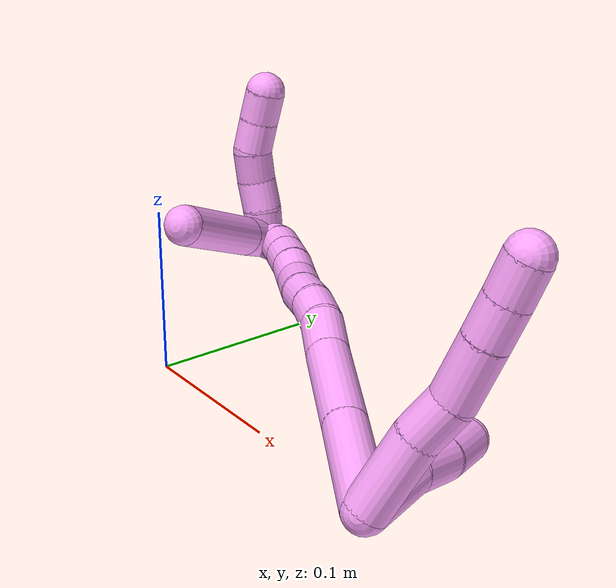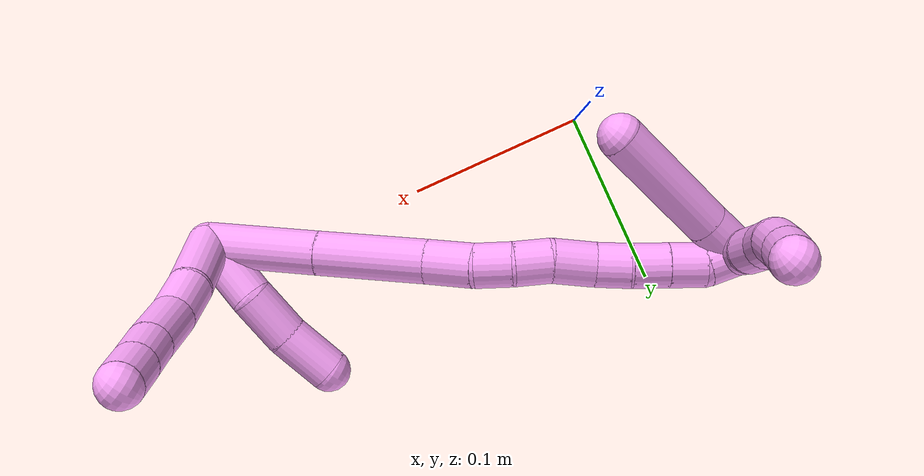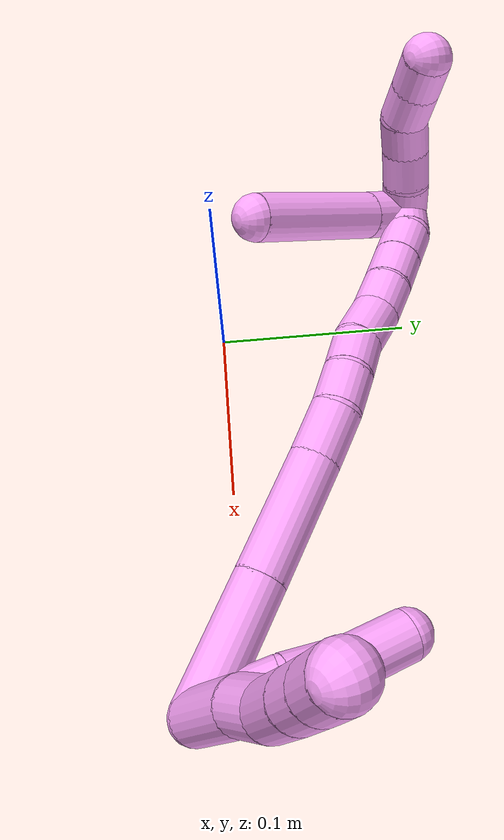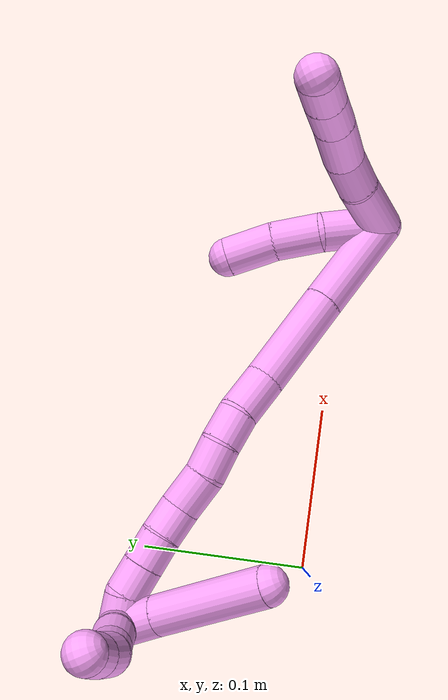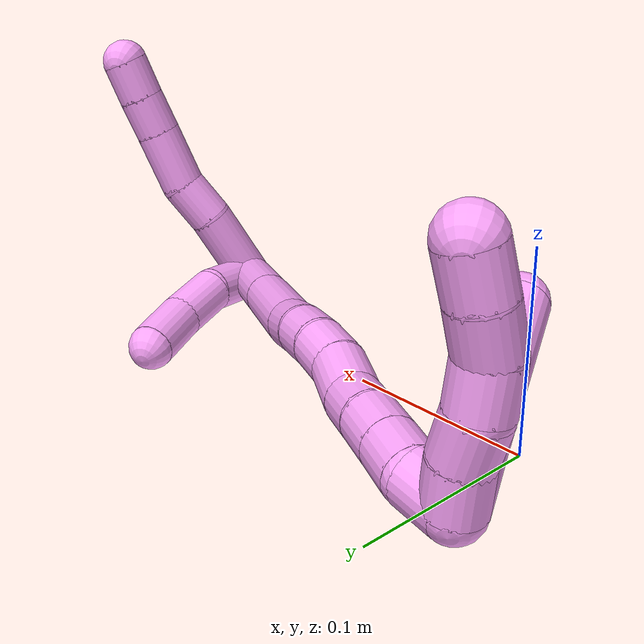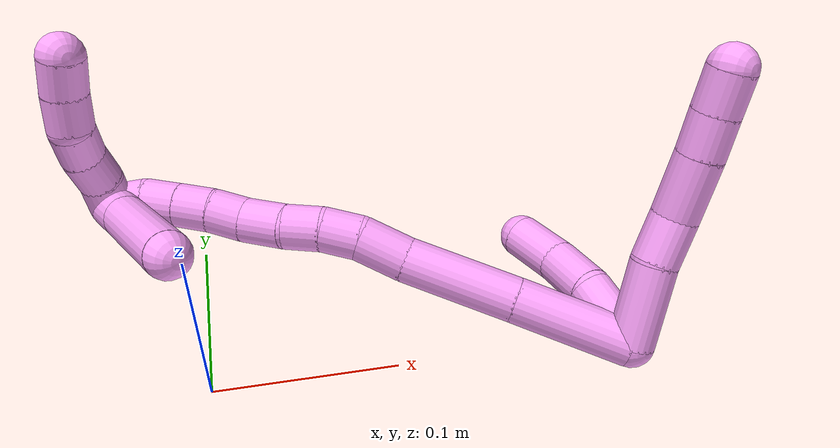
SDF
<sdf version="1.7">
 <world name="default">
  <model name="4">
   <static>0</static>
   <link name="4">
    <collision name="collision-cylinder-e_1_2_8">
     <pose>-0.022456 -0.003877 0.001171 1.27744 -1.39237 -1.11089</pose>
     <geometry><cylinder><radius>0.0125</radius><length>0.045637</length></cylinder></geometry>
     <surface>
      <friction><ode><mu>1.16</mu><mu2>1.16</mu2><slip1>0</slip1><slip2>0</slip2></ode></friction>
      <contact><ode><kp>1e+06</kp><kd>1</kd><max_vel>0</max_vel><min_depth>0.001</min_depth></ode></contact>
     </surface>
    </collision>
    <visual name="visual-cylinder-e_1_2_8">
     <pose>-0.022456 -0.003877 0.001171 1.27744 -1.39237 -1.11089</pose>
     <geometry><cylinder><radius>0.0125</radius><length>0.045637</length></cylinder></geometry>
     <material><ambient>1 0.65098 0.996078 1</ambient></material>
    </visual>
    <collision name="collision-cylinder-e_2_8_9">
     <pose>-0.057644 -0.00781 0.003544 0.047277 -1.47655 -0.04302</pose>
     <geometry><cylinder><radius>0.0125</radius><length>0.025576</length></cylinder></geometry>
     <surface>
      <friction><ode><mu>1.16</mu><mu2>1.16</mu2><slip1>0</slip1><slip2>0</slip2></ode></friction>
      <contact><ode><kp>1e+06</kp><kd>1</kd><max_vel>0</max_vel><min_depth>0.001</min_depth></ode></contact>
     </surface>
    </collision>
    <visual name="visual-cylinder-e_2_8_9">
     <pose>-0.057644 -0.00781 0.003544 0.047277 -1.47655 -0.04302</pose>
     <geometry><cylinder><radius>0.0125</radius><length>0.025576</length></cylinder></geometry>
     <material><ambient>1 0.65098 0.996078 1</ambient></material>
    </visual>
    <collision name="collision-cylinder-e_3_9_10">
     <pose>-0.086585 -0.011992 0.008247 0.867016 -1.2487 -0.6438</pose>
     <geometry><cylinder><radius>0.0125</radius><length>0.034178</length></cylinder></geometry>
     <surface>
      <friction><ode><mu>1.16</mu><mu2>1.16</mu2><slip1>0</slip1><slip2>0</slip2></ode></friction>
      <contact><ode><kp>1e+06</kp><kd>1</kd><max_vel>0</max_vel><min_depth>0.001</min_depth></ode></contact>
     </surface>
    </collision>
    <visual name="visual-cylinder-e_3_9_10">
     <pose>-0.086585 -0.011992 0.008247 0.867016 -1.2487 -0.6438</pose>
     <geometry><cylinder><radius>0.0125</radius><length>0.034178</length></cylinder></geometry>
     <material><ambient>1 0.65098 0.996078 1</ambient></material>
    </visual>
    <collision name="collision-cylinder-e_4_10_11">
     <pose>-0.113448 -0.019012 0.013634 0.993345 -1.25707 -0.750571</pose>
     <geometry><cylinder><radius>0.0125</radius><length>0.0224</length></cylinder></geometry>
     <surface>
      <friction><ode><mu>1.16</mu><mu2>1.16</mu2><slip1>0</slip1><slip2>0</slip2></ode></friction>
      <contact><ode><kp>1e+06</kp><kd>1</kd><max_vel>0</max_vel><min_depth>0.001</min_depth></ode></contact>
     </surface>
    </collision>
    <visual name="visual-cylinder-e_4_10_11">
     <pose>-0.113448 -0.019012 0.013634 0.993345 -1.25707 -0.750571</pose>
     <geometry><cylinder><radius>0.0125</radius><length>0.0224</length></cylinder></geometry>
     <material><ambient>1 0.65098 0.996078 1</ambient></material>
    </visual>
    <collision name="collision-cylinder-e_5_11_6">
     <pose>-0.134571 -0.02496 0.017614 0.969687 -1.23103 -0.713191</pose>
     <geometry><cylinder><radius>0.0125</radius><length>0.02221</length></cylinder></geometry>
     <surface>
      <friction><ode><mu>1.16</mu><mu2>1.16</mu2><slip1>0</slip1><slip2>0</slip2></ode></friction>
      <contact><ode><kp>1e+06</kp><kd>1</kd><max_vel>0</max_vel><min_depth>0.001</min_depth></ode></contact>
     </surface>
    </collision>
    <visual name="visual-cylinder-e_5_11_6">
     <pose>-0.134571 -0.02496 0.017614 0.969687 -1.23103 -0.713191</pose>
     <geometry><cylinder><radius>0.0125</radius><length>0.02221</length></cylinder></geometry>
     <material><ambient>1 0.65098 0.996078 1</ambient></material>
    </visual>
    <collision name="collision-cylinder-e_1_2_12">
     <pose>-0.009027 -0.000328 -0.016936 3.1222 -0.489611 -3.06401</pose>
     <geometry><cylinder><radius>0.0125</radius><length>0.038388</length></cylinder></geometry>
     <surface>
      <friction><ode><mu>1.16</mu><mu2>1.16</mu2><slip1>0</slip1><slip2>0</slip2></ode></friction>
      <contact><ode><kp>1e+06</kp><kd>1</kd><max_vel>0</max_vel><min_depth>0.001</min_depth></ode></contact>
     </surface>
    </collision>
    <visual name="visual-cylinder-e_1_2_12">
     <pose>-0.009027 -0.000328 -0.016936 3.1222 -0.489611 -3.06401</pose>
     <geometry><cylinder><radius>0.0125</radius><length>0.038388</length></cylinder></geometry>
     <material><ambient>1 0.65098 0.996078 1</ambient></material>
    </visual>
    <collision name="collision-cylinder-e_2_12_13">
     <pose>-0.021463 0.001521 -0.04851 -2.99389 -0.226432 1.98783</pose>
     <geometry><cylinder><radius>0.0125</radius><length>0.030374</length></cylinder></geometry>
     <surface>
      <friction><ode><mu>1.16</mu><mu2>1.16</mu2><slip1>0</slip1><slip2>0</slip2></ode></friction>
      <contact><ode><kp>1e+06</kp><kd>1</kd><max_vel>0</max_vel><min_depth>0.001</min_depth></ode></contact>
     </surface>
    </collision>
    <visual name="visual-cylinder-e_2_12_13">
     <pose>-0.021463 0.001521 -0.04851 -2.99389 -0.226432 1.98783</pose>
     <geometry><cylinder><radius>0.0125</radius><length>0.030374</length></cylinder></geometry>
     <material><ambient>1 0.65098 0.996078 1</ambient></material>
    </visual>
    <collision name="collision-cylinder-e_3_13_5">
     <pose>-0.027789 0.003526 -0.078491 3.13034 -0.187851 -3.02226</pose>
     <geometry><cylinder><radius>0.0125</radius><length>0.031239</length></cylinder></geometry>
     <surface>
      <friction><ode><mu>1.16</mu><mu2>1.16</mu2><slip1>0</slip1><slip2>0</slip2></ode></friction>
      <contact><ode><kp>1e+06</kp><kd>1</kd><max_vel>0</max_vel><min_depth>0.001</min_depth></ode></contact>
     </surface>
    </collision>
    <visual name="visual-cylinder-e_3_13_5">
     <pose>-0.027789 0.003526 -0.078491 3.13034 -0.187851 -3.02226</pose>
     <geometry><cylinder><radius>0.0125</radius><length>0.031239</length></cylinder></geometry>
     <material><ambient>1 0.65098 0.996078 1</ambient></material>
    </visual>
    <collision name="collision-cylinder-e_1_2_14">
     <pose>-0.001388 -0.020759 -0.02415 2.43155 -0.043551 -0.117358</pose>
     <geometry><cylinder><radius>0.0125</radius><length>0.063752</length></cylinder></geometry>
     <surface>
      <friction><ode><mu>1.16</mu><mu2>1.16</mu2><slip1>0</slip1><slip2>0</slip2></ode></friction>
      <contact><ode><kp>1e+06</kp><kd>1</kd><max_vel>0</max_vel><min_depth>0.001</min_depth></ode></contact>
     </surface>
    </collision>
    <visual name="visual-cylinder-e_1_2_14">
     <pose>-0.001388 -0.020759 -0.02415 2.43155 -0.043551 -0.117358</pose>
     <geometry><cylinder><radius>0.0125</radius><length>0.063752</length></cylinder></geometry>
     <material><ambient>1 0.65098 0.996078 1</ambient></material>
    </visual>
    <collision name="collision-cylinder-e_2_14_15">
     <pose>-0.003827 -0.061765 -0.071927 2.4331 -0.033785 -0.091294</pose>
     <geometry><cylinder><radius>0.0125</radius><length>0.062267</length></cylinder></geometry>
     <surface>
      <friction><ode><mu>1.16</mu><mu2>1.16</mu2><slip1>0</slip1><slip2>0</slip2></ode></friction>
      <contact><ode><kp>1e+06</kp><kd>1</kd><max_vel>0</max_vel><min_depth>0.001</min_depth></ode></contact>
     </surface>
    </collision>
    <visual name="visual-cylinder-e_2_14_15">
     <pose>-0.003827 -0.061765 -0.071927 2.4331 -0.033785 -0.091294</pose>
     <geometry><cylinder><radius>0.0125</radius><length>0.062267</length></cylinder></geometry>
     <material><ambient>1 0.65098 0.996078 1</ambient></material>
    </visual>
    <collision name="collision-cylinder-e_3_15_16">
     <pose>-0.0067 -0.091555 -0.105137 2.35828 -0.133885 -0.32186</pose>
     <geometry><cylinder><radius>0.0125</radius><length>0.027291</length></cylinder></geometry>
     <surface>
      <friction><ode><mu>1.16</mu><mu2>1.16</mu2><slip1>0</slip1><slip2>0</slip2></ode></friction>
      <contact><ode><kp>1e+06</kp><kd>1</kd><max_vel>0</max_vel><min_depth>0.001</min_depth></ode></contact>
     </surface>
    </collision>
    <visual name="visual-cylinder-e_3_15_16">
     <pose>-0.0067 -0.091555 -0.105137 2.35828 -0.133885 -0.32186</pose>
     <geometry><cylinder><radius>0.0125</radius><length>0.027291</length></cylinder></geometry>
     <material><ambient>1 0.65098 0.996078 1</ambient></material>
    </visual>
    <collision name="collision-cylinder-e_4_16_17">
     <pose>-0.007665 -0.108401 -0.122309 2.37538 0.081124 0.200726</pose>
     <geometry><cylinder><radius>0.0125</radius><length>0.021136</length></cylinder></geometry>
     <surface>
      <friction><ode><mu>1.16</mu><mu2>1.16</mu2><slip1>0</slip1><slip2>0</slip2></ode></friction>
      <contact><ode><kp>1e+06</kp><kd>1</kd><max_vel>0</max_vel><min_depth>0.001</min_depth></ode></contact>
     </surface>
    </collision>
    <visual name="visual-cylinder-e_4_16_17">
     <pose>-0.007665 -0.108401 -0.122309 2.37538 0.081124 0.200726</pose>
     <geometry><cylinder><radius>0.0125</radius><length>0.021136</length></cylinder></geometry>
     <material><ambient>1 0.65098 0.996078 1</ambient></material>
    </visual>
    <collision name="collision-cylinder-e_5_17_18">
     <pose>-0.004271 -0.122178 -0.137656 2.44618 0.246084 0.657648</pose>
     <geometry><cylinder><radius>0.0125</radius><length>0.020834</length></cylinder></geometry>
     <surface>
      <friction><ode><mu>1.16</mu><mu2>1.16</mu2><slip1>0</slip1><slip2>0</slip2></ode></friction>
      <contact><ode><kp>1e+06</kp><kd>1</kd><max_vel>0</max_vel><min_depth>0.001</min_depth></ode></contact>
     </surface>
    </collision>
    <visual name="visual-cylinder-e_5_17_18">
     <pose>-0.004271 -0.122178 -0.137656 2.44618 0.246084 0.657648</pose>
     <geometry><cylinder><radius>0.0125</radius><length>0.020834</length></cylinder></geometry>
     <material><ambient>1 0.65098 0.996078 1</ambient></material>
    </visual>
    <collision name="collision-cylinder-e_6_18_19">
     <pose>0.00041 -0.134533 -0.156024 2.63549 0.174887 0.653702</pose>
     <geometry><cylinder><radius>0.0125</radius><length>0.024641</length></cylinder></geometry>
     <surface>
      <friction><ode><mu>1.16</mu><mu2>1.16</mu2><slip1>0</slip1><slip2>0</slip2></ode></friction>
      <contact><ode><kp>1e+06</kp><kd>1</kd><max_vel>0</max_vel><min_depth>0.001</min_depth></ode></contact>
     </surface>
    </collision>
    <visual name="visual-cylinder-e_6_18_19">
     <pose>0.00041 -0.134533 -0.156024 2.63549 0.174887 0.653702</pose>
     <geometry><cylinder><radius>0.0125</radius><length>0.024641</length></cylinder></geometry>
     <material><ambient>1 0.65098 0.996078 1</ambient></material>
    </visual>
    <collision name="collision-cylinder-e_7_19_20">
     <pose>0.003028 -0.146819 -0.174305 2.44577 0.047448 0.130671</pose>
     <geometry><cylinder><radius>0.0125</radius><length>0.020006</length></cylinder></geometry>
     <surface>
      <friction><ode><mu>1.16</mu><mu2>1.16</mu2><slip1>0</slip1><slip2>0</slip2></ode></friction>
      <contact><ode><kp>1e+06</kp><kd>1</kd><max_vel>0</max_vel><min_depth>0.001</min_depth></ode></contact>
     </surface>
    </collision>
    <visual name="visual-cylinder-e_7_19_20">
     <pose>0.003028 -0.146819 -0.174305 2.44577 0.047448 0.130671</pose>
     <geometry><cylinder><radius>0.0125</radius><length>0.020006</length></cylinder></geometry>
     <material><ambient>1 0.65098 0.996078 1</ambient></material>
    </visual>
    <collision name="collision-cylinder-e_8_20_21">
     <pose>0.005128 -0.159327 -0.18975 2.47616 0.16302 0.464278</pose>
     <geometry><cylinder><radius>0.0125</radius><length>0.020035</length></cylinder></geometry>
     <surface>
      <friction><ode><mu>1.16</mu><mu2>1.16</mu2><slip1>0</slip1><slip2>0</slip2></ode></friction>
      <contact><ode><kp>1e+06</kp><kd>1</kd><max_vel>0</max_vel><min_depth>0.001</min_depth></ode></contact>
     </surface>
    </collision>
    <visual name="visual-cylinder-e_8_20_21">
     <pose>0.005128 -0.159327 -0.18975 2.47616 0.16302 0.464278</pose>
     <geometry><cylinder><radius>0.0125</radius><length>0.020035</length></cylinder></geometry>
     <material><ambient>1 0.65098 0.996078 1</ambient></material>
    </visual>
    <collision name="collision-cylinder-e_9_21_22">
     <pose>0.008497 -0.171403 -0.205363 2.49042 0.175006 0.508465</pose>
     <geometry><cylinder><radius>0.0125</radius><length>0.020013</length></cylinder></geometry>
     <surface>
      <friction><ode><mu>1.16</mu><mu2>1.16</mu2><slip1>0</slip1><slip2>0</slip2></ode></friction>
      <contact><ode><kp>1e+06</kp><kd>1</kd><max_vel>0</max_vel><min_depth>0.001</min_depth></ode></contact>
     </surface>
    </collision>
    <visual name="visual-cylinder-e_9_21_22">
     <pose>0.008497 -0.171403 -0.205363 2.49042 0.175006 0.508465</pose>
     <geometry><cylinder><radius>0.0125</radius><length>0.020013</length></cylinder></geometry>
     <material><ambient>1 0.65098 0.996078 1</ambient></material>
    </visual>
    <collision name="collision-cylinder-e_10_22_1">
     <pose>0.014647 -0.184166 -0.219091 2.28525 0.455869 0.940431</pose>
     <geometry><cylinder><radius>0.0125</radius><length>0.020024</length></cylinder></geometry>
     <surface>
      <friction><ode><mu>1.16</mu><mu2>1.16</mu2><slip1>0</slip1><slip2>0</slip2></ode></friction>
      <contact><ode><kp>1e+06</kp><kd>1</kd><max_vel>0</max_vel><min_depth>0.001</min_depth></ode></contact>
     </surface>
    </collision>
    <visual name="visual-cylinder-e_10_22_1">
     <pose>0.014647 -0.184166 -0.219091 2.28525 0.455869 0.940431</pose>
     <geometry><cylinder><radius>0.0125</radius><length>0.020024</length></cylinder></geometry>
     <material><ambient>1 0.65098 0.996078 1</ambient></material>
    </visual>
    <collision name="collision-cylinder-e_1_1_23">
     <pose>0.018998 -0.192542 -0.211383 0.116027 -0.004106 -0.000238</pose>
     <geometry><cylinder><radius>0.0125</radius><length>0.027379</length></cylinder></geometry>
     <surface>
      <friction><ode><mu>1.16</mu><mu2>1.16</mu2><slip1>0</slip1><slip2>0</slip2></ode></friction>
      <contact><ode><kp>1e+06</kp><kd>1</kd><max_vel>0</max_vel><min_depth>0.001</min_depth></ode></contact>
     </surface>
    </collision>
    <visual name="visual-cylinder-e_1_1_23">
     <pose>0.018998 -0.192542 -0.211383 0.116027 -0.004106 -0.000238</pose>
     <geometry><cylinder><radius>0.0125</radius><length>0.027379</length></cylinder></geometry>
     <material><ambient>1 0.65098 0.996078 1</ambient></material>
    </visual>
    <collision name="collision-cylinder-e_2_23_4">
     <pose>0.018402 -0.199419 -0.161867 0.146274 -0.014869 -0.001089</pose>
     <geometry><cylinder><radius>0.0125</radius><length>0.072621</length></cylinder></geometry>
     <surface>
      <friction><ode><mu>1.16</mu><mu2>1.16</mu2><slip1>0</slip1><slip2>0</slip2></ode></friction>
      <contact><ode><kp>1e+06</kp><kd>1</kd><max_vel>0</max_vel><min_depth>0.001</min_depth></ode></contact>
     </surface>
    </collision>
    <visual name="visual-cylinder-e_2_23_4">
     <pose>0.018402 -0.199419 -0.161867 0.146274 -0.014869 -0.001089</pose>
     <geometry><cylinder><radius>0.0125</radius><length>0.072621</length></cylinder></geometry>
     <material><ambient>1 0.65098 0.996078 1</ambient></material>
    </visual>
    <collision name="collision-cylinder-e_1_1_24">
     <pose>0.011904 -0.197451 -0.222391 1.19134 -0.796667 -0.555719</pose>
     <geometry><cylinder><radius>0.0125</radius><length>0.02</length></cylinder></geometry>
     <surface>
      <friction><ode><mu>1.16</mu><mu2>1.16</mu2><slip1>0</slip1><slip2>0</slip2></ode></friction>
      <contact><ode><kp>1e+06</kp><kd>1</kd><max_vel>0</max_vel><min_depth>0.001</min_depth></ode></contact>
     </surface>
    </collision>
    <visual name="visual-cylinder-e_1_1_24">
     <pose>0.011904 -0.197451 -0.222391 1.19134 -0.796667 -0.555719</pose>
     <geometry><cylinder><radius>0.0125</radius><length>0.02</length></cylinder></geometry>
     <material><ambient>1 0.65098 0.996078 1</ambient></material>
    </visual>
    <collision name="collision-cylinder-e_2_24_25">
     <pose>-0.001303 -0.211641 -0.217782 1.31421 -0.650642 -0.509155</pose>
     <geometry><cylinder><radius>0.0125</radius><length>0.02</length></cylinder></geometry>
     <surface>
      <friction><ode><mu>1.16</mu><mu2>1.16</mu2><slip1>0</slip1><slip2>0</slip2></ode></friction>
      <contact><ode><kp>1e+06</kp><kd>1</kd><max_vel>0</max_vel><min_depth>0.001</min_depth></ode></contact>
     </surface>
    </collision>
    <visual name="visual-cylinder-e_2_24_25">
     <pose>-0.001303 -0.211641 -0.217782 1.31421 -0.650642 -0.509155</pose>
     <geometry><cylinder><radius>0.0125</radius><length>0.02</length></cylinder></geometry>
     <material><ambient>1 0.65098 0.996078 1</ambient></material>
    </visual>
    <collision name="collision-cylinder-e_3_25_26">
     <pose>-0.014141 -0.225772 -0.21221 1.06622 -0.745087 -0.45329</pose>
     <geometry><cylinder><radius>0.0125</radius><length>0.02</length></cylinder></geometry>
     <surface>
      <friction><ode><mu>1.16</mu><mu2>1.16</mu2><slip1>0</slip1><slip2>0</slip2></ode></friction>
      <contact><ode><kp>1e+06</kp><kd>1</kd><max_vel>0</max_vel><min_depth>0.001</min_depth></ode></contact>
     </surface>
    </collision>
    <visual name="visual-cylinder-e_3_25_26">
     <pose>-0.014141 -0.225772 -0.21221 1.06622 -0.745087 -0.45329</pose>
     <geometry><cylinder><radius>0.0125</radius><length>0.02</length></cylinder></geometry>
     <material><ambient>1 0.65098 0.996078 1</ambient></material>
    </visual>
    <collision name="collision-cylinder-e_4_26_27">
     <pose>-0.029689 -0.236797 -0.207221 1.26784 -1.06908 -0.821</pose>
     <geometry><cylinder><radius>0.0125</radius><length>0.02</length></cylinder></geometry>
     <surface>
      <friction><ode><mu>1.16</mu><mu2>1.16</mu2><slip1>0</slip1><slip2>0</slip2></ode></friction>
      <contact><ode><kp>1e+06</kp><kd>1</kd><max_vel>0</max_vel><min_depth>0.001</min_depth></ode></contact>
     </surface>
    </collision>
    <visual name="visual-cylinder-e_4_26_27">
     <pose>-0.029689 -0.236797 -0.207221 1.26784 -1.06908 -0.821</pose>
     <geometry><cylinder><radius>0.0125</radius><length>0.02</length></cylinder></geometry>
     <material><ambient>1 0.65098 0.996078 1</ambient></material>
    </visual>
    <collision name="collision-cylinder-e_5_27_3">
     <pose>-0.047333 -0.245431 -0.203583 1.07179 -1.09221 -0.692749</pose>
     <geometry><cylinder><radius>0.0125</radius><length>0.02</length></cylinder></geometry>
     <surface>
      <friction><ode><mu>1.16</mu><mu2>1.16</mu2><slip1>0</slip1><slip2>0</slip2></ode></friction>
      <contact><ode><kp>1e+06</kp><kd>1</kd><max_vel>0</max_vel><min_depth>0.001</min_depth></ode></contact>
     </surface>
    </collision>
    <visual name="visual-cylinder-e_5_27_3">
     <pose>-0.047333 -0.245431 -0.203583 1.07179 -1.09221 -0.692749</pose>
     <geometry><cylinder><radius>0.0125</radius><length>0.02</length></cylinder></geometry>
     <material><ambient>1 0.65098 0.996078 1</ambient></material>
    </visual>
    <collision name="collision-sphere-3">
     <pose>-0.056209 -0.249474 -0.201379 0 -0 0</pose>
     <geometry><sphere><radius>0.0125</radius></sphere></geometry>
     <surface>
      <friction><ode><mu>1.16</mu><mu2>1.16</mu2><slip1>0</slip1><slip2>0</slip2></ode></friction>
      <contact><ode><kp>1e+06</kp><kd>1</kd><max_vel>0</max_vel><min_depth>0.001</min_depth></ode></contact>
     </surface>
    </collision>
    <visual name="visual-sphere-3">
     <pose>-0.056209 -0.249474 -0.201379 0 -0 0</pose>
     <geometry><sphere><radius>0.0125</radius></sphere></geometry>
     <material><ambient>1 0.65098 0.996078 1</ambient></material>
    </visual>
    <collision name="collision-sphere-27">
     <pose>-0.038456 -0.241387 -0.205787 0 -0 0</pose>
     <geometry><sphere><radius>0.0125</radius></sphere></geometry>
     <surface>
      <friction><ode><mu>1.16</mu><mu2>1.16</mu2><slip1>0</slip1><slip2>0</slip2></ode></friction>
      <contact><ode><kp>1e+06</kp><kd>1</kd><max_vel>0</max_vel><min_depth>0.001</min_depth></ode></contact>
     </surface>
    </collision>
    <visual name="visual-sphere-27">
     <pose>-0.038456 -0.241387 -0.205787 0 -0 0</pose>
     <geometry><sphere><radius>0.0125</radius></sphere></geometry>
     <material><ambient>1 0.65098 0.996078 1</ambient></material>
    </visual>
    <collision name="collision-sphere-26">
     <pose>-0.020921 -0.232206 -0.208656 0 -0 0</pose>
     <geometry><sphere><radius>0.0125</radius></sphere></geometry>
     <surface>
      <friction><ode><mu>1.16</mu><mu2>1.16</mu2><slip1>0</slip1><slip2>0</slip2></ode></friction>
      <contact><ode><kp>1e+06</kp><kd>1</kd><max_vel>0</max_vel><min_depth>0.001</min_depth></ode></contact>
     </surface>
    </collision>
    <visual name="visual-sphere-26">
     <pose>-0.020921 -0.232206 -0.208656 0 -0 0</pose>
     <geometry><sphere><radius>0.0125</radius></sphere></geometry>
     <material><ambient>1 0.65098 0.996078 1</ambient></material>
    </visual>
    <collision name="collision-sphere-25">
     <pose>-0.00736 -0.219338 -0.215763 0 -0 0</pose>
     <geometry><sphere><radius>0.0125</radius></sphere></geometry>
     <surface>
      <friction><ode><mu>1.16</mu><mu2>1.16</mu2><slip1>0</slip1><slip2>0</slip2></ode></friction>
      <contact><ode><kp>1e+06</kp><kd>1</kd><max_vel>0</max_vel><min_depth>0.001</min_depth></ode></contact>
     </surface>
    </collision>
    <visual name="visual-sphere-25">
     <pose>-0.00736 -0.219338 -0.215763 0 -0 0</pose>
     <geometry><sphere><radius>0.0125</radius></sphere></geometry>
     <material><ambient>1 0.65098 0.996078 1</ambient></material>
    </visual>
    <collision name="collision-sphere-24">
     <pose>0.004754 -0.203945 -0.219802 0 -0 0</pose>
     <geometry><sphere><radius>0.0125</radius></sphere></geometry>
     <surface>
      <friction><ode><mu>1.16</mu><mu2>1.16</mu2><slip1>0</slip1><slip2>0</slip2></ode></friction>
      <contact><ode><kp>1e+06</kp><kd>1</kd><max_vel>0</max_vel><min_depth>0.001</min_depth></ode></contact>
     </surface>
    </collision>
    <visual name="visual-sphere-24">
     <pose>0.004754 -0.203945 -0.219802 0 -0 0</pose>
     <geometry><sphere><radius>0.0125</radius></sphere></geometry>
     <material><ambient>1 0.65098 0.996078 1</ambient></material>
    </visual>
    <collision name="collision-sphere-4">
     <pose>0.017862 -0.204711 -0.125948 0 -0 0</pose>
     <geometry><sphere><radius>0.0125</radius></sphere></geometry>
     <surface>
      <friction><ode><mu>1.16</mu><mu2>1.16</mu2><slip1>0</slip1><slip2>0</slip2></ode></friction>
      <contact><ode><kp>1e+06</kp><kd>1</kd><max_vel>0</max_vel><min_depth>0.001</min_depth></ode></contact>
     </surface>
    </collision>
    <visual name="visual-sphere-4">
     <pose>0.017862 -0.204711 -0.125948 0 -0 0</pose>
     <geometry><sphere><radius>0.0125</radius></sphere></geometry>
     <material><ambient>1 0.65098 0.996078 1</ambient></material>
    </visual>
    <collision name="collision-sphere-23">
     <pose>0.018942 -0.194127 -0.197786 0 -0 0</pose>
     <geometry><sphere><radius>0.0125</radius></sphere></geometry>
     <surface>
      <friction><ode><mu>1.16</mu><mu2>1.16</mu2><slip1>0</slip1><slip2>0</slip2></ode></friction>
      <contact><ode><kp>1e+06</kp><kd>1</kd><max_vel>0</max_vel><min_depth>0.001</min_depth></ode></contact>
     </surface>
    </collision>
    <visual name="visual-sphere-23">
     <pose>0.018942 -0.194127 -0.197786 0 -0 0</pose>
     <geometry><sphere><radius>0.0125</radius></sphere></geometry>
     <material><ambient>1 0.65098 0.996078 1</ambient></material>
    </visual>
    <collision name="collision-sphere-1">
     <pose>0.019054 -0.190958 -0.224981 0 -0 0</pose>
     <geometry><sphere><radius>0.0125</radius></sphere></geometry>
     <surface>
      <friction><ode><mu>1.16</mu><mu2>1.16</mu2><slip1>0</slip1><slip2>0</slip2></ode></friction>
      <contact><ode><kp>1e+06</kp><kd>1</kd><max_vel>0</max_vel><min_depth>0.001</min_depth></ode></contact>
     </surface>
    </collision>
    <visual name="visual-sphere-1">
     <pose>0.019054 -0.190958 -0.224981 0 -0 0</pose>
     <geometry><sphere><radius>0.0125</radius></sphere></geometry>
     <material><ambient>1 0.65098 0.996078 1</ambient></material>
    </visual>
    <collision name="collision-sphere-22">
     <pose>0.010239 -0.177375 -0.213201 0 -0 0</pose>
     <geometry><sphere><radius>0.0125</radius></sphere></geometry>
     <surface>
      <friction><ode><mu>1.16</mu><mu2>1.16</mu2><slip1>0</slip1><slip2>0</slip2></ode></friction>
      <contact><ode><kp>1e+06</kp><kd>1</kd><max_vel>0</max_vel><min_depth>0.001</min_depth></ode></contact>
     </surface>
    </collision>
    <visual name="visual-sphere-22">
     <pose>0.010239 -0.177375 -0.213201 0 -0 0</pose>
     <geometry><sphere><radius>0.0125</radius></sphere></geometry>
     <material><ambient>1 0.65098 0.996078 1</ambient></material>
    </visual>
    <collision name="collision-sphere-21">
     <pose>0.006754 -0.16543 -0.197526 0 -0 0</pose>
     <geometry><sphere><radius>0.0125</radius></sphere></geometry>
     <surface>
      <friction><ode><mu>1.16</mu><mu2>1.16</mu2><slip1>0</slip1><slip2>0</slip2></ode></friction>
      <contact><ode><kp>1e+06</kp><kd>1</kd><max_vel>0</max_vel><min_depth>0.001</min_depth></ode></contact>
     </surface>
    </collision>
    <visual name="visual-sphere-21">
     <pose>0.006754 -0.16543 -0.197526 0 -0 0</pose>
     <geometry><sphere><radius>0.0125</radius></sphere></geometry>
     <material><ambient>1 0.65098 0.996078 1</ambient></material>
    </visual>
    <collision name="collision-sphere-6">
     <pose>-0.145041 -0.028012 0.019707 0 -0 0</pose>
     <geometry><sphere><radius>0.0125</radius></sphere></geometry>
     <surface>
      <friction><ode><mu>1.16</mu><mu2>1.16</mu2><slip1>0</slip1><slip2>0</slip2></ode></friction>
      <contact><ode><kp>1e+06</kp><kd>1</kd><max_vel>0</max_vel><min_depth>0.001</min_depth></ode></contact>
     </surface>
    </collision>
    <visual name="visual-sphere-6">
     <pose>-0.145041 -0.028012 0.019707 0 -0 0</pose>
     <geometry><sphere><radius>0.0125</radius></sphere></geometry>
     <material><ambient>1 0.65098 0.996078 1</ambient></material>
    </visual>
    <collision name="collision-sphere-11">
     <pose>-0.124101 -0.021908 0.015521 0 -0 0</pose>
     <geometry><sphere><radius>0.0125</radius></sphere></geometry>
     <surface>
      <friction><ode><mu>1.16</mu><mu2>1.16</mu2><slip1>0</slip1><slip2>0</slip2></ode></friction>
      <contact><ode><kp>1e+06</kp><kd>1</kd><max_vel>0</max_vel><min_depth>0.001</min_depth></ode></contact>
     </surface>
    </collision>
    <visual name="visual-sphere-11">
     <pose>-0.124101 -0.021908 0.015521 0 -0 0</pose>
     <geometry><sphere><radius>0.0125</radius></sphere></geometry>
     <material><ambient>1 0.65098 0.996078 1</ambient></material>
    </visual>
    <collision name="collision-sphere-10">
     <pose>-0.102795 -0.016116 0.011747 0 -0 0</pose>
     <geometry><sphere><radius>0.0125</radius></sphere></geometry>
     <surface>
      <friction><ode><mu>1.16</mu><mu2>1.16</mu2><slip1>0</slip1><slip2>0</slip2></ode></friction>
      <contact><ode><kp>1e+06</kp><kd>1</kd><max_vel>0</max_vel><min_depth>0.001</min_depth></ode></contact>
     </surface>
    </collision>
    <visual name="visual-sphere-10">
     <pose>-0.102795 -0.016116 0.011747 0 -0 0</pose>
     <geometry><sphere><radius>0.0125</radius></sphere></geometry>
     <material><ambient>1 0.65098 0.996078 1</ambient></material>
    </visual>
    <collision name="collision-sphere-9">
     <pose>-0.070375 -0.007867 0.004746 0 -0 0</pose>
     <geometry><sphere><radius>0.0125</radius></sphere></geometry>
     <surface>
      <friction><ode><mu>1.16</mu><mu2>1.16</mu2><slip1>0</slip1><slip2>0</slip2></ode></friction>
      <contact><ode><kp>1e+06</kp><kd>1</kd><max_vel>0</max_vel><min_depth>0.001</min_depth></ode></contact>
     </surface>
    </collision>
    <visual name="visual-sphere-9">
     <pose>-0.070375 -0.007867 0.004746 0 -0 0</pose>
     <geometry><sphere><radius>0.0125</radius></sphere></geometry>
     <material><ambient>1 0.65098 0.996078 1</ambient></material>
    </visual>
    <collision name="collision-sphere-2">
     <geometry><sphere><radius>0.0125</radius></sphere></geometry>
     <surface>
      <friction><ode><mu>1.16</mu><mu2>1.16</mu2><slip1>0</slip1><slip2>0</slip2></ode></friction>
      <contact><ode><kp>1e+06</kp><kd>1</kd><max_vel>0</max_vel><min_depth>0.001</min_depth></ode></contact>
     </surface>
    </collision>
    <visual name="visual-sphere-2">
     <geometry><sphere><radius>0.0125</radius></sphere></geometry>
     <material><ambient>1 0.65098 0.996078 1</ambient></material>
    </visual>
    <collision name="collision-sphere-19">
     <pose>0.002554 -0.140414 -0.166636 0 -0 0</pose>
     <geometry><sphere><radius>0.0125</radius></sphere></geometry>
     <surface>
      <friction><ode><mu>1.16</mu><mu2>1.16</mu2><slip1>0</slip1><slip2>0</slip2></ode></friction>
      <contact><ode><kp>1e+06</kp><kd>1</kd><max_vel>0</max_vel><min_depth>0.001</min_depth></ode></contact>
     </surface>
    </collision>
    <visual name="visual-sphere-19">
     <pose>0.002554 -0.140414 -0.166636 0 -0 0</pose>
     <geometry><sphere><radius>0.0125</radius></sphere></geometry>
     <material><ambient>1 0.65098 0.996078 1</ambient></material>
    </visual>
    <collision name="collision-sphere-8">
     <pose>-0.044913 -0.007754 0.002342 0 -0 0</pose>
     <geometry><sphere><radius>0.0125</radius></sphere></geometry>
     <surface>
      <friction><ode><mu>1.16</mu><mu2>1.16</mu2><slip1>0</slip1><slip2>0</slip2></ode></friction>
      <contact><ode><kp>1e+06</kp><kd>1</kd><max_vel>0</max_vel><min_depth>0.001</min_depth></ode></contact>
     </surface>
    </collision>
    <visual name="visual-sphere-8">
     <pose>-0.044913 -0.007754 0.002342 0 -0 0</pose>
     <geometry><sphere><radius>0.0125</radius></sphere></geometry>
     <material><ambient>1 0.65098 0.996078 1</ambient></material>
    </visual>
    <collision name="collision-sphere-12">
     <pose>-0.018053 -0.000657 -0.033872 0 -0 0</pose>
     <geometry><sphere><radius>0.0125</radius></sphere></geometry>
     <surface>
      <friction><ode><mu>1.16</mu><mu2>1.16</mu2><slip1>0</slip1><slip2>0</slip2></ode></friction>
      <contact><ode><kp>1e+06</kp><kd>1</kd><max_vel>0</max_vel><min_depth>0.001</min_depth></ode></contact>
     </surface>
    </collision>
    <visual name="visual-sphere-12">
     <pose>-0.018053 -0.000657 -0.033872 0 -0 0</pose>
     <geometry><sphere><radius>0.0125</radius></sphere></geometry>
     <material><ambient>1 0.65098 0.996078 1</ambient></material>
    </visual>
    <collision name="collision-sphere-13">
     <pose>-0.024872 0.003699 -0.063147 0 -0 0</pose>
     <geometry><sphere><radius>0.0125</radius></sphere></geometry>
     <surface>
      <friction><ode><mu>1.16</mu><mu2>1.16</mu2><slip1>0</slip1><slip2>0</slip2></ode></friction>
      <contact><ode><kp>1e+06</kp><kd>1</kd><max_vel>0</max_vel><min_depth>0.001</min_depth></ode></contact>
     </surface>
    </collision>
    <visual name="visual-sphere-13">
     <pose>-0.024872 0.003699 -0.063147 0 -0 0</pose>
     <geometry><sphere><radius>0.0125</radius></sphere></geometry>
     <material><ambient>1 0.65098 0.996078 1</ambient></material>
    </visual>
    <collision name="collision-sphere-5">
     <pose>-0.030706 0.003354 -0.093835 0 -0 0</pose>
     <geometry><sphere><radius>0.0125</radius></sphere></geometry>
     <surface>
      <friction><ode><mu>1.16</mu><mu2>1.16</mu2><slip1>0</slip1><slip2>0</slip2></ode></friction>
      <contact><ode><kp>1e+06</kp><kd>1</kd><max_vel>0</max_vel><min_depth>0.001</min_depth></ode></contact>
     </surface>
    </collision>
    <visual name="visual-sphere-5">
     <pose>-0.030706 0.003354 -0.093835 0 -0 0</pose>
     <geometry><sphere><radius>0.0125</radius></sphere></geometry>
     <material><ambient>1 0.65098 0.996078 1</ambient></material>
    </visual>
    <collision name="collision-sphere-14">
     <pose>-0.002776 -0.041519 -0.0483 0 -0 0</pose>
     <geometry><sphere><radius>0.0125</radius></sphere></geometry>
     <surface>
      <friction><ode><mu>1.16</mu><mu2>1.16</mu2><slip1>0</slip1><slip2>0</slip2></ode></friction>
      <contact><ode><kp>1e+06</kp><kd>1</kd><max_vel>0</max_vel><min_depth>0.001</min_depth></ode></contact>
     </surface>
    </collision>
    <visual name="visual-sphere-14">
     <pose>-0.002776 -0.041519 -0.0483 0 -0 0</pose>
     <geometry><sphere><radius>0.0125</radius></sphere></geometry>
     <material><ambient>1 0.65098 0.996078 1</ambient></material>
    </visual>
    <collision name="collision-sphere-15">
     <pose>-0.004879 -0.082012 -0.095555 0 -0 0</pose>
     <geometry><sphere><radius>0.0125</radius></sphere></geometry>
     <surface>
      <friction><ode><mu>1.16</mu><mu2>1.16</mu2><slip1>0</slip1><slip2>0</slip2></ode></friction>
      <contact><ode><kp>1e+06</kp><kd>1</kd><max_vel>0</max_vel><min_depth>0.001</min_depth></ode></contact>
     </surface>
    </collision>
    <visual name="visual-sphere-15">
     <pose>-0.004879 -0.082012 -0.095555 0 -0 0</pose>
     <geometry><sphere><radius>0.0125</radius></sphere></geometry>
     <material><ambient>1 0.65098 0.996078 1</ambient></material>
    </visual>
    <collision name="collision-sphere-16">
     <pose>-0.008522 -0.101097 -0.114719 0 -0 0</pose>
     <geometry><sphere><radius>0.0125</radius></sphere></geometry>
     <surface>
      <friction><ode><mu>1.16</mu><mu2>1.16</mu2><slip1>0</slip1><slip2>0</slip2></ode></friction>
      <contact><ode><kp>1e+06</kp><kd>1</kd><max_vel>0</max_vel><min_depth>0.001</min_depth></ode></contact>
     </surface>
    </collision>
    <visual name="visual-sphere-16">
     <pose>-0.008522 -0.101097 -0.114719 0 -0 0</pose>
     <geometry><sphere><radius>0.0125</radius></sphere></geometry>
     <material><ambient>1 0.65098 0.996078 1</ambient></material>
    </visual>
    <collision name="collision-sphere-17">
     <pose>-0.006809 -0.115705 -0.129899 0 -0 0</pose>
     <geometry><sphere><radius>0.0125</radius></sphere></geometry>
     <surface>
      <friction><ode><mu>1.16</mu><mu2>1.16</mu2><slip1>0</slip1><slip2>0</slip2></ode></friction>
      <contact><ode><kp>1e+06</kp><kd>1</kd><max_vel>0</max_vel><min_depth>0.001</min_depth></ode></contact>
     </surface>
    </collision>
    <visual name="visual-sphere-17">
     <pose>-0.006809 -0.115705 -0.129899 0 -0 0</pose>
     <geometry><sphere><radius>0.0125</radius></sphere></geometry>
     <material><ambient>1 0.65098 0.996078 1</ambient></material>
    </visual>
    <collision name="collision-sphere-18">
     <pose>-0.001734 -0.128651 -0.145413 0 -0 0</pose>
     <geometry><sphere><radius>0.0125</radius></sphere></geometry>
     <surface>
      <friction><ode><mu>1.16</mu><mu2>1.16</mu2><slip1>0</slip1><slip2>0</slip2></ode></friction>
      <contact><ode><kp>1e+06</kp><kd>1</kd><max_vel>0</max_vel><min_depth>0.001</min_depth></ode></contact>
     </surface>
    </collision>
    <visual name="visual-sphere-18">
     <pose>-0.001734 -0.128651 -0.145413 0 -0 0</pose>
     <geometry><sphere><radius>0.0125</radius></sphere></geometry>
     <material><ambient>1 0.65098 0.996078 1</ambient></material>
    </visual>
    <collision name="collision-sphere-20">
     <pose>0.003503 -0.153224 -0.181974 0 -0 0</pose>
     <geometry><sphere><radius>0.0125</radius></sphere></geometry>
     <surface>
      <friction><ode><mu>1.16</mu><mu2>1.16</mu2><slip1>0</slip1><slip2>0</slip2></ode></friction>
      <contact><ode><kp>1e+06</kp><kd>1</kd><max_vel>0</max_vel><min_depth>0.001</min_depth></ode></contact>
     </surface>
    </collision>
    <visual name="visual-sphere-20">
     <pose>0.003503 -0.153224 -0.181974 0 -0 0</pose>
     <geometry><sphere><radius>0.0125</radius></sphere></geometry>
     <material><ambient>1 0.65098 0.996078 1</ambient></material>
    </visual>
    <inertial>
     <pose>-0.016978 -0.097048 -0.10164 0 -0 0</pose>
     <mass>0.75</mass>
     <inertia><ixx>7e-05</ixx><ixy>0</ixy><ixz>0</ixz><iyy>3e-06</iyy><iyz>0</iyz><izz>6.9e-05</izz></inertia>
    </inertial>
   </link>
   <pose>0.219347 -0.020985 0.020079 -1.06447 0.855276 -2.20663</pose>
  </model>
 </world>
</sdf>
